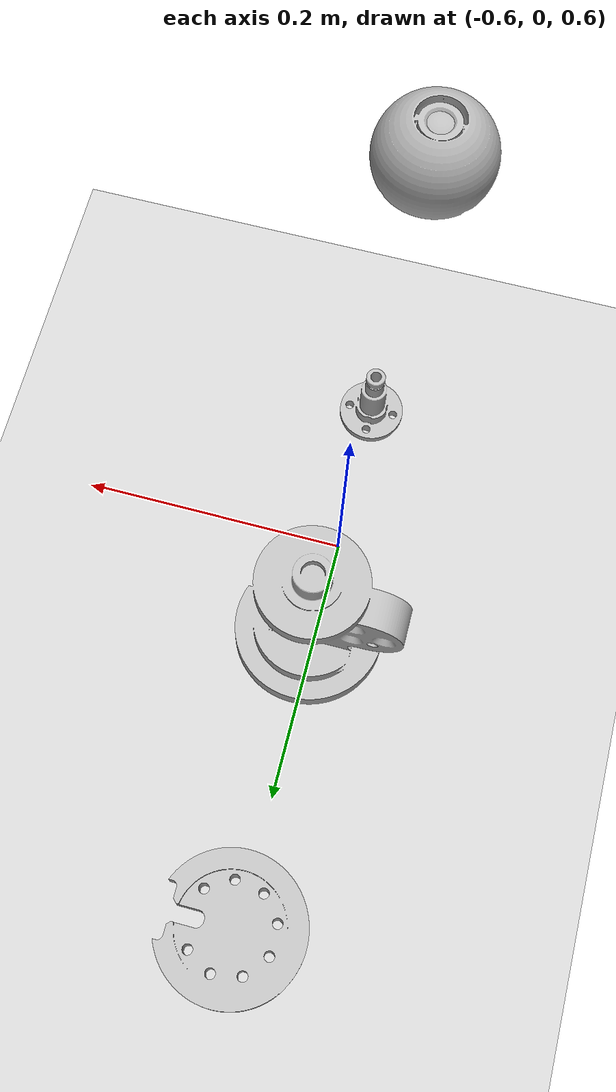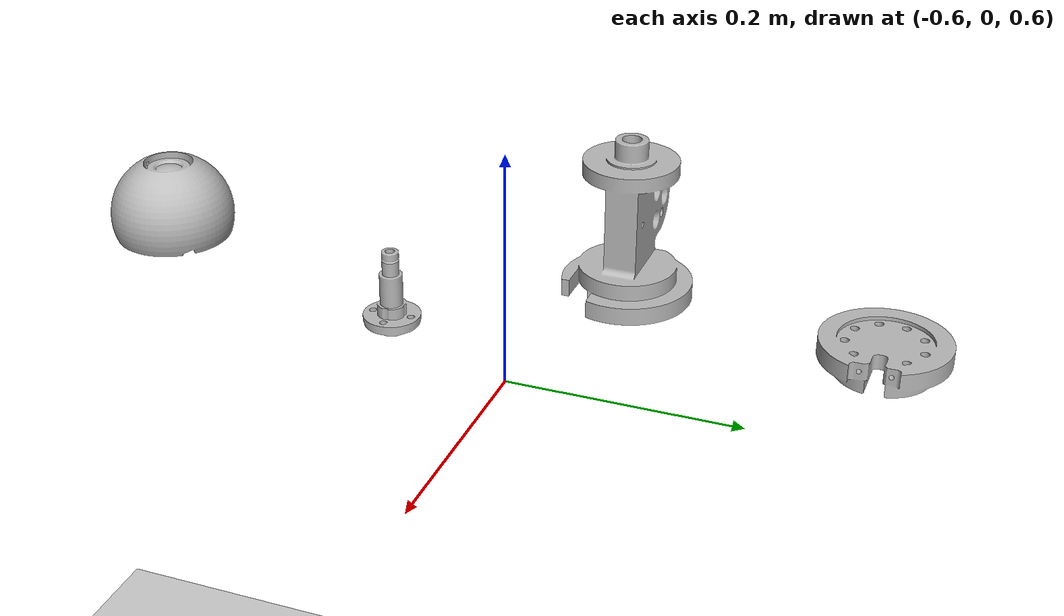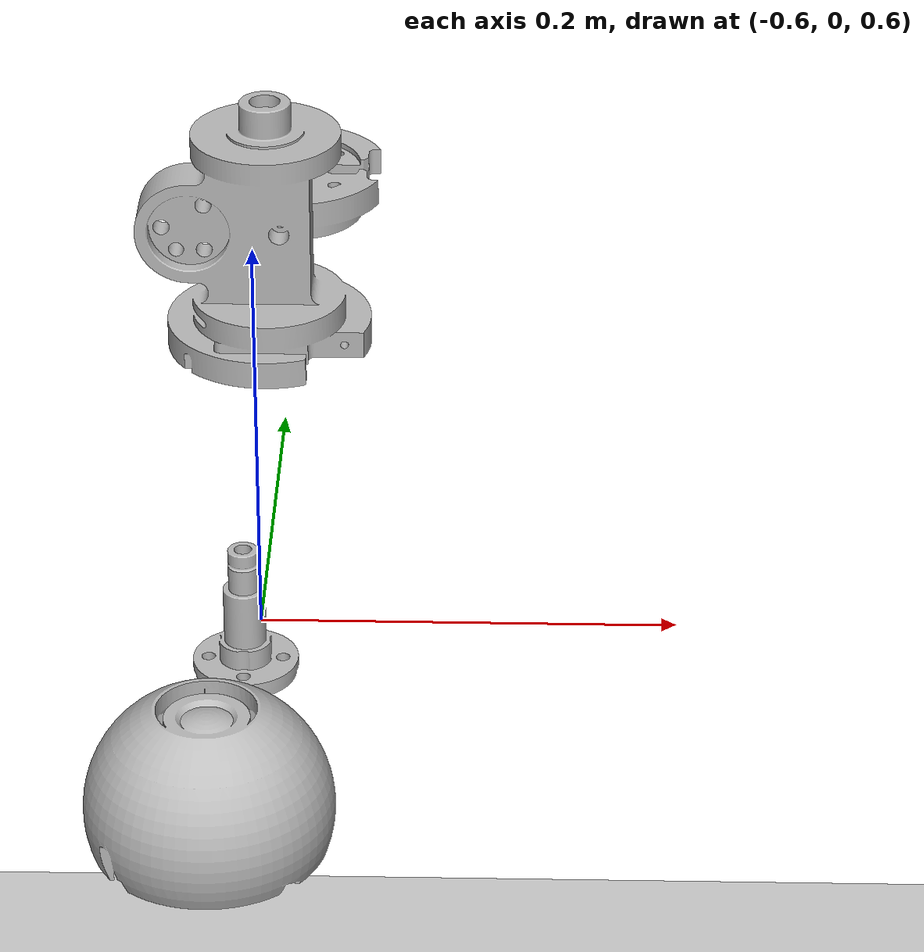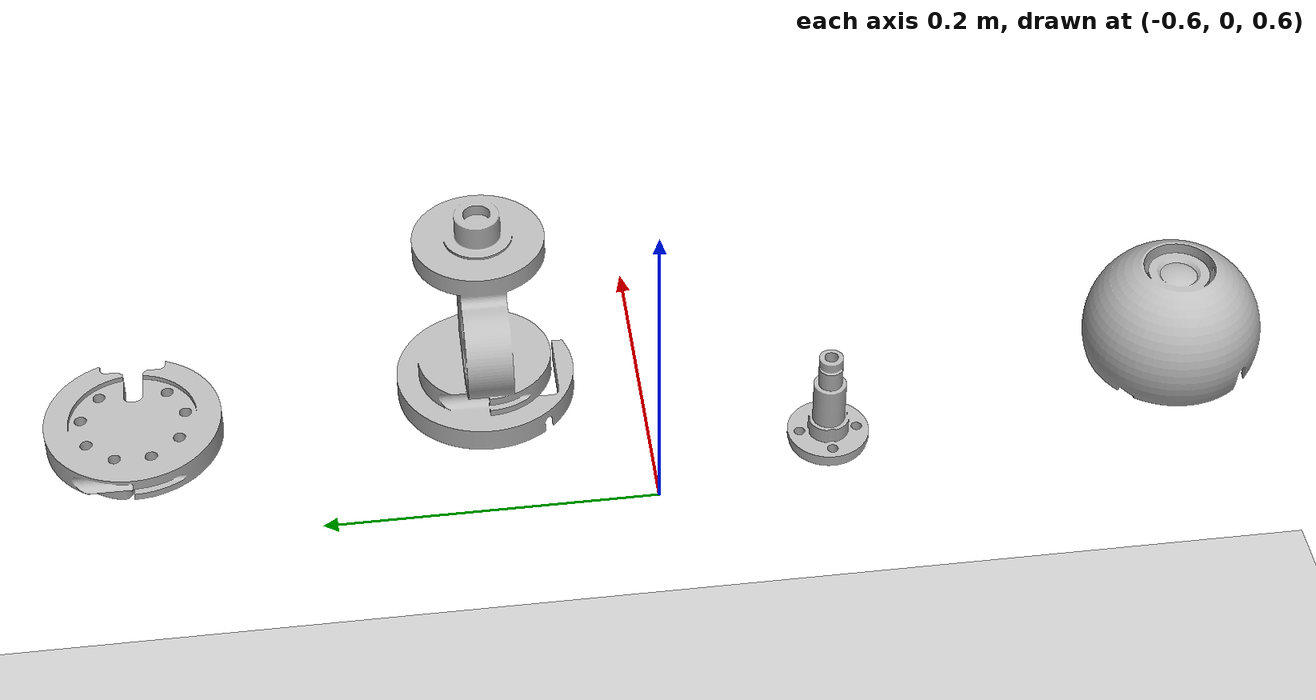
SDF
<sdf version="1.7">
 <world name="default">
  <plugin name="mover" filename="libweb-contest-sandbox-world.so"/>
  <include><uri>model://sun</uri></include>
  <light name="user_point_light_0" type="point">
   <pose>0.197302 -0.215077 1 0 -0 0</pose>
   <diffuse>0.5 0.5 0.5 1</diffuse>
   <specular>0.1 0.1 0.1 1</specular>
   <attenuation>
    <range>20</range>
    <constant>0.5</constant>
    <linear>0.01</linear>
    <quadratic>0.001</quadratic>
   </attenuation>
   <cast_shadows>0</cast_shadows>
   <direction>0 0 -1</direction>
  </light>
  <include><uri>model://ground_plane</uri></include>
  <include><uri>model://fallback-1</uri><pose>-0.6 -0.3 0.7 0 0 0</pose></include>
  <include><uri>model://fallback-2</uri><pose>-0.6 -0.1 0.7 0 0 0</pose></include>
  <include><uri>model://fallback-3</uri><pose>-0.6 0.1 0.7 0 0 0</pose></include>
  <include><uri>model://object</uri><pose>-0.6 0.3 0.7 0 0 0</pose></include>
 </world>
</sdf>

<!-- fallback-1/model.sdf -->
<sdf version="1.7">
  <model name="fallback-1">
    <link name="base_link">
      <collision name="collision">
        <geometry>
            <mesh>
                <uri> model://fallback-1/mesh.stl </uri>
                <scale>0.0025 0.0025 0.0025</scale>
            </mesh>
        </geometry>
      </collision>
      <visual name="visual">
        <geometry>
            <mesh>
                <uri> model://fallback-1/mesh.stl </uri>
                <scale>0.0025 0.0025 0.0025</scale>
            </mesh>
        </geometry>
      </visual>
    </link>
  </model>
</sdf>

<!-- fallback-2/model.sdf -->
<sdf version="1.7">
  <model name="fallback-2">
    <link name="base_link">
      <collision name="collision">
        <geometry>
            <box>
                <size>0.08 0.08 0.16</size>
            </box>
        </geometry>
      </collision>
      <visual name="visual">
        <geometry>
            <mesh>
                <uri> model://fallback-2/mesh.stl </uri>
                <scale>0.002 0.002 0.002</scale>
            </mesh>
        </geometry>
        <pose>0 0 0 0 0 0</pose>
      </visual>
    </link>
  </model>
</sdf>

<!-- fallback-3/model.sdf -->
<sdf version="1.7">
  <model name="fallback-3">
    <link name="base_link">
      <collision name="collision">
        <geometry>
            <mesh>
                <uri> model://fallback-3/mesh.stl </uri>
                <scale>0.0025 0.0025 0.0025</scale>
            </mesh>
        </geometry>
      </collision>
      <visual name="visual">
        <geometry>
            <mesh>
                <uri> model://fallback-3/mesh.stl </uri>
                <scale>0.0025 0.0025 0.0025</scale>
            </mesh>
        </geometry>
      </visual>
    </link>
  </model>
</sdf>

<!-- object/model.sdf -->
<sdf version="1.7">
  <model name="object">
    <link name="base_link">
      <collision name="collision">
        <geometry>
            <mesh>
                <uri> model://object/mesh.stl </uri>
                <scale>0.0025 0.0025 0.0025</scale>
            </mesh>
        </geometry>
      </collision>
      <visual name="visual">
        <geometry>
            <mesh>
                <uri> model://object/mesh.stl </uri>
                <scale>0.0025 0.0025 0.0025</scale>
            </mesh>
        </geometry>
      </visual>
    </link>
  </model>
</sdf>
